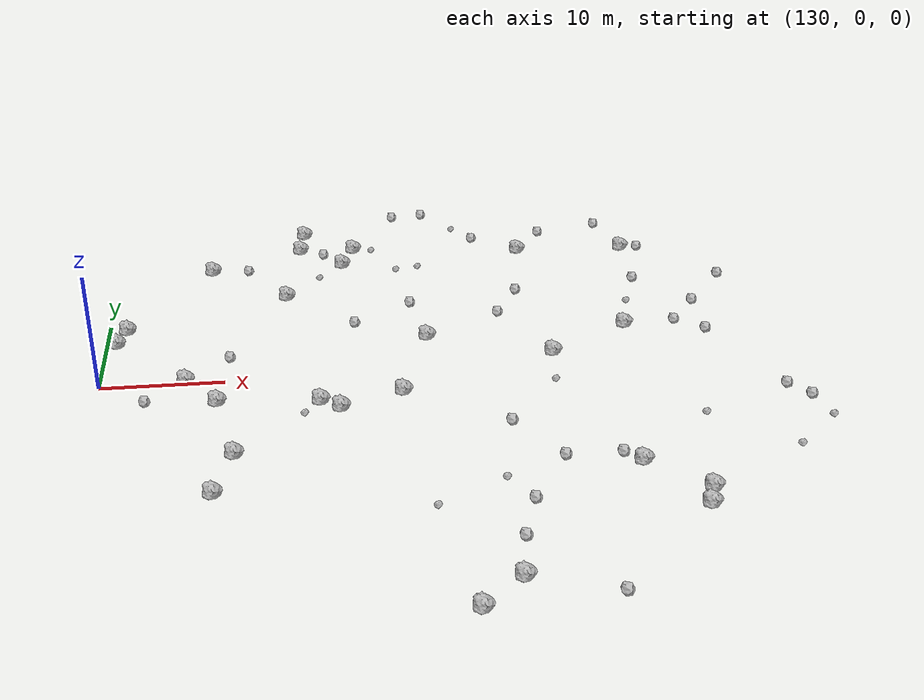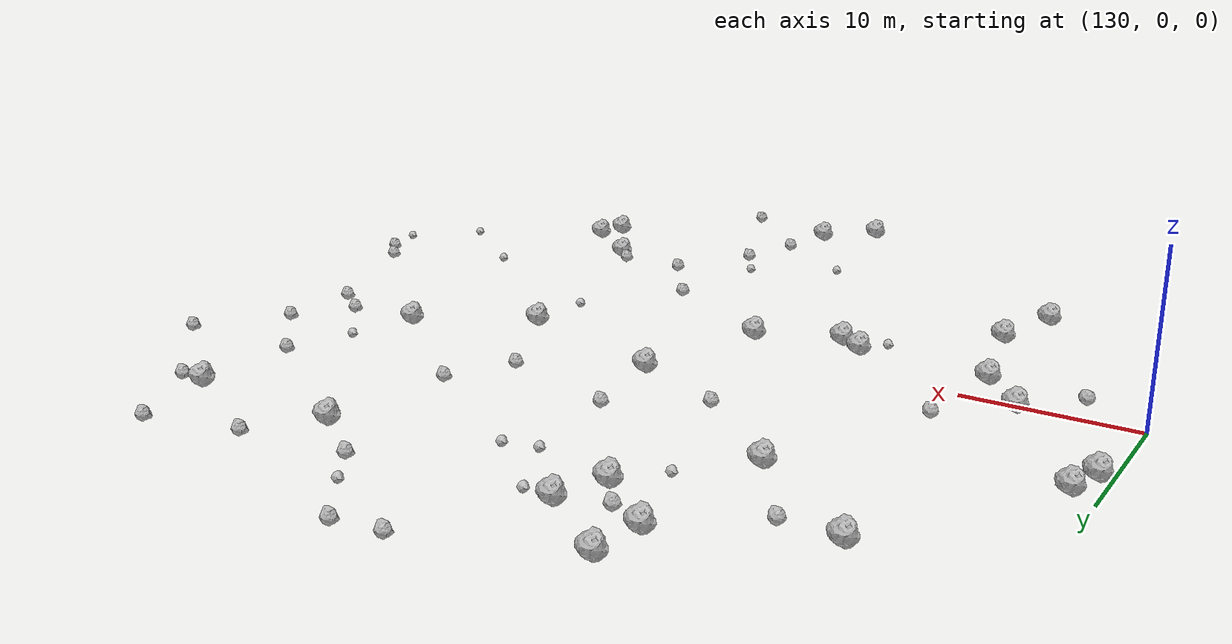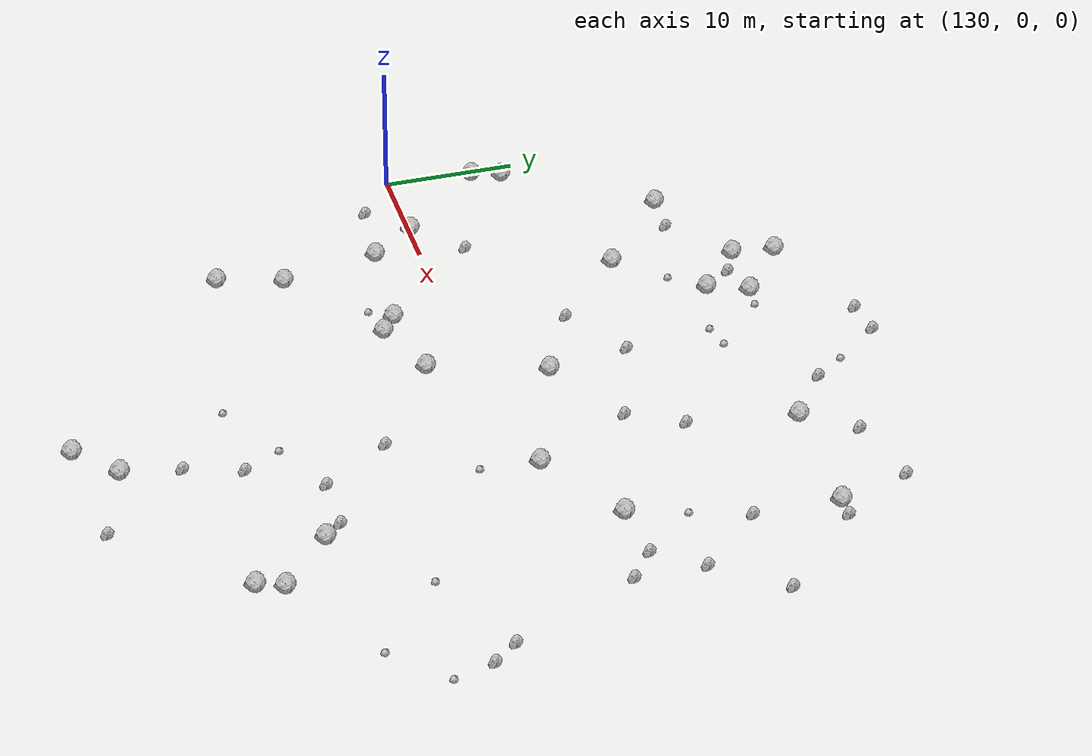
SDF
<sdf version="1.6">
 <world name="default">
  <include><uri>model://sun</uri></include>
  <model name="rock1_4_2">
   <include><uri>model://rock1</uri><pose>175.44486376630158 -18.501612034647422 0.5 0 0 0</pose></include>
  </model>
  <model name="rock1_4_3">
   <include><uri>model://rock1</uri><pose>150.20382533223 19.5284390477974 0.5 0 0 0</pose></include>
  </model>
  <model name="rock1_4_4">
   <include><uri>model://rock1</uri><pose>154.24395595245744 -3.217446124546669 0.5 0 0 0</pose></include>
  </model>
  <model name="rock1_4_5">
   <include><uri>model://rock1</uri><pose>173.9919000933789 5.677781961815782 0.5 0 0 0</pose></include>
  </model>
  <model name="rock1_4_6">
   <include><uri>model://rock1</uri><pose>157.34492995404565 -29.740510856194547 0.5 0 0 0</pose></include>
  </model>
  <model name="rock1_4_7">
   <include><uri>model://rock1</uri><pose>151.34595522499143 22.52751767376359 0.5 0 0 0</pose></include>
  </model>
  <model name="rock1_4_8">
   <include><uri>model://rock1</uri><pose>171.1493201924034 -14.722947811592649 0.5 0 0 0</pose></include>
  </model>
  <model name="rock1_4_9">
   <include><uri>model://rock1</uri><pose>166.82973843979403 20.901776822136767 0.5 0 0 0</pose></include>
  </model>
  <model name="rock1_4_10">
   <include><uri>model://rock1</uri><pose>167.10828084361708 1.6490158716435168 0.5 0 0 0</pose></include>
  </model>
  <model name="rock1_4_11">
   <include><uri>model://rock1</uri><pose>146.41629859669666 22.79414948002203 0.5 0 0 0</pose></include>
  </model>
  <model name="rock1_4_12">
   <include><uri>model://rock1</uri><pose>156.86909758141275 5.32952571115117 0.5 0 0 0</pose></include>
  </model>
  <model name="rock1_4_13">
   <include><uri>model://rock1</uri><pose>138.33541993851964 19.231941633807175 0.5 0 0 0</pose></include>
  </model>
  <model name="rock1_4_14">
   <include><uri>model://rock1</uri><pose>130.8219027012826 6.571943656760453 0.5 0 0 0</pose></include>
  </model>
  <model name="rock1_4_15">
   <include><uri>model://rock1</uri><pose>136.87922100403026 0.09101325411002748 0.5 0 0 0</pose></include>
  </model>
  <model name="rock1_4_16">
   <include><uri>model://rock1</uri><pose>149.21240049127874 -5.115773308641884 0.5 0 0 0</pose></include>
  </model>
  <model name="rock1_4_17">
   <include><uri>model://rock1</uri><pose>131.50390843859392 8.822605663041053 0.5 0 0 0</pose></include>
  </model>
  <model name="rock1_4_18">
   <include><uri>model://rock1</uri><pose>147.64468290806536 -3.984948387348396 0.5 0 0 0</pose></include>
  </model>
  <model name="rock1_4_19">
   <include><uri>model://rock1</uri><pose>174.777059612085 -20.42582892699248 0.5 0 0 0</pose></include>
  </model>
  <model name="rock1_4_20">
   <include><uri>model://rock1</uri><pose>160.4702541816197 -26.930228913218826 0.5 0 0 0</pose></include>
  </model>
  <model name="rock1_4_21">
   <include><uri>model://rock1</uri><pose>146.8188691693681 26.024597823866777 0.5 0 0 0</pose></include>
  </model>
  <model name="rock1_4_22">
   <include><uri>model://rock1</uri><pose>139.51226110562618 -3.3248185702015363 0.5 0 0 0</pose></include>
  </model>
  <model name="rock1_4_23">
   <include><uri>model://rock1</uri><pose>145.0714473566234 13.676458564570368 0.5 0 0 0</pose></include>
  </model>
  <model name="rock1_4_24">
   <include><uri>model://rock1</uri><pose>139.65254659202057 -15.620697448049786 0.5 0 0 0</pose></include>
  </model>
  <model name="rock1_4_25">
   <include><uri>model://rock1</uri><pose>176.7098855553174 20.492040994203045 0.5 0 0 0</pose></include>
  </model>
  <model name="rock1_4_26">
   <include><uri>model://rock1</uri><pose>141.04719999229692 -10.764122396638665 0.5 0 0 0</pose></include>
  </model>
  <model name="rock2_4_0">
   <include><uri>model://rock2</uri><pose>166.81551425494578 -28.962436069100384 0.3 0 0 0</pose></include>
  </model>
  <model name="rock2_4_1">
   <include><uri>model://rock2</uri><pose>162.75903214608724 23.851494657934055 0.3 0 0 0</pose></include>
  </model>
  <model name="rock2_4_2">
   <include><uri>model://rock2</uri><pose>176.47458128506113 14.13831521182015 0.3 0 0 0</pose></include>
  </model>
  <model name="rock2_4_3">
   <include><uri>model://rock2</uri><pose>141.58128477032164 19.068919835448874 0.3 0 0 0</pose></include>
  </model>
  <model name="rock2_4_4">
   <include><uri>model://rock2</uri><pose>155.86293931501615 11.488804133300142 0.3 0 0 0</pose></include>
  </model>
  <model name="rock2_4_5">
   <include><uri>model://rock2</uri><pose>150.84527094572408 8.332087293417587 0.3 0 0 0</pose></include>
  </model>
  <model name="rock2_4_6">
   <include><uri>model://rock2</uri><pose>162.22400070002965 -8.301293393509493 0.3 0 0 0</pose></include>
  </model>
  <model name="rock2_4_7">
   <include><uri>model://rock2</uri><pose>175.11171715650437 25.871856426238622 0.3 0 0 0</pose></include>
  </model>
  <model name="rock2_4_8">
   <include><uri>model://rock2</uri><pose>140.32469767353882 3.5008629475611457 0.3 0 0 0</pose></include>
  </model>
  <model name="rock2_4_9">
   <include><uri>model://rock2</uri><pose>133.82079967771188 -2.720650618749243 0.3 0 0 0</pose></include>
  </model>
  <model name="rock2_4_10">
   <include><uri>model://rock2</uri><pose>178.41133316224762 6.07640271133161 0.3 0 0 0</pose></include>
  </model>
  <model name="rock2_4_11">
   <include><uri>model://rock2</uri><pose>180.83539163800518 9.43178371156165 0.3 0 0 0</pose></include>
  </model>
  <model name="rock2_4_12">
   <include><uri>model://rock2</uri><pose>155.45246763590217 29.333738965949102 0.3 0 0 0</pose></include>
  </model>
  <model name="rock2_4_13">
   <include><uri>model://rock2</uri><pose>169.35088043352562 24.580520483142365 0.3 0 0 0</pose></include>
  </model>
  <model name="rock2_4_14">
   <include><uri>model://rock2</uri><pose>184.96617048370206 -5.2020313713064255 0.3 0 0 0</pose></include>
  </model>
  <model name="rock2_4_15">
   <include><uri>model://rock2</uri><pose>184.44625184450067 14.223859351940938 0.3 0 0 0</pose></include>
  </model>
  <model name="rock2_4_16">
   <include><uri>model://rock2</uri><pose>165.53023597505398 -13.342829184183337 0.3 0 0 0</pose></include>
  </model>
  <model name="rock2_4_17">
   <include><uri>model://rock2</uri><pose>165.4861374934894 12.912618707675136 0.3 0 0 0</pose></include>
  </model>
  <model name="rock2_4_18">
   <include><uri>model://rock2</uri><pose>169.88314014622986 -13.392427894486794 0.3 0 0 0</pose></include>
  </model>
  <model name="rock2_4_19">
   <include><uri>model://rock2</uri><pose>186.44428148260386 -7.018040569433705 0.3 0 0 0</pose></include>
  </model>
  <model name="rock2_4_20">
   <include><uri>model://rock2</uri><pose>148.51405941773643 21.75235151908361 0.3 0 0 0</pose></include>
  </model>
  <model name="rock2_4_21">
   <include><uri>model://rock2</uri><pose>163.3565799045224 8.980182969956182 0.3 0 0 0</pose></include>
  </model>
  <model name="rock2_4_22">
   <include><uri>model://rock2</uri><pose>158.3449469618817 29.643650692916545 0.3 0 0 0</pose></include>
  </model>
  <model name="rock2_4_23">
   <include><uri>model://rock2</uri><pose>178.25875301093316 20.4723871791574 0.3 0 0 0</pose></include>
  </model>
  <model name="rock2_4_24">
   <include><uri>model://rock2</uri><pose>161.15265025370866 -22.604234279893674 0.3 0 0 0</pose></include>
  </model>
  <model name="rock2_4_25">
   <include><uri>model://rock2</uri><pose>180.7418276720923 4.269292164274347 0.3 0 0 0</pose></include>
  </model>
  <model name="rock2_4_26">
   <include><uri>model://rock2</uri><pose>162.47171445461927 -18.43787082853577 0.3 0 0 0</pose></include>
  </model>
  <model name="rock3_4_0">
   <include><uri>model://rock3</uri><pose>155.4952609993763 -18.54072300118429 0.2 0 0 0</pose></include>
  </model>
  <model name="rock3_4_1">
   <include><uri>model://rock3</uri><pose>160.81328038060826 -15.637609374551003 0.2 0 0 0</pose></include>
  </model>
  <model name="rock3_4_2">
   <include><uri>model://rock3</uri><pose>155.07790587294056 18.149706221461514 0.2 0 0 0</pose></include>
  </model>
  <model name="rock3_4_3">
   <include><uri>model://rock3</uri><pose>148.02892404790492 17.175294130152224 0.2 0 0 0</pose></include>
  </model>
  <model name="rock3_4_4">
   <include><uri>model://rock3</uri><pose>183.51346214313963 -13.696922080976822 0.2 0 0 0</pose></include>
  </model>
  <model name="rock3_4_5">
   <include><uri>model://rock3</uri><pose>177.45955460485354 -8.68404789654701 0.2 0 0 0</pose></include>
  </model>
  <model name="rock3_4_6">
   <include><uri>model://rock3</uri><pose>152.9984627137083 22.361090529623276 0.2 0 0 0</pose></include>
  </model>
  <model name="rock3_4_7">
   <include><uri>model://rock3</uri><pose>187.225939440316 -10.031792257193509 0.2 0 0 0</pose></include>
  </model>
  <model name="rock3_4_8">
   <include><uri>model://rock3</uri><pose>166.59334113957456 -2.590328566495053 0.2 0 0 0</pose></include>
  </model>
  <model name="rock3_4_9">
   <include><uri>model://rock3</uri><pose>161.0363449344734 26.180969876508442 0.2 0 0 0</pose></include>
  </model>
  <model name="rock3_4_10">
   <include><uri>model://rock3</uri><pose>157.10303323618618 18.56581370711192 0.2 0 0 0</pose></include>
  </model>
  <model name="rock3_4_11">
   <include><uri>model://rock3</uri><pose>175.0273046559389 9.963379292122 0.2 0 0 0</pose></include>
  </model>
  <model name="rock3_4_12">
   <include><uri>model://rock3</uri><pose>146.32980483300773 -5.567469868210072 0.2 0 0 0</pose></include>
  </model>
 </world>
</sdf>
